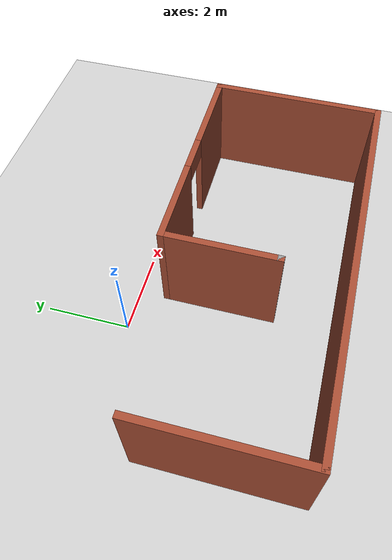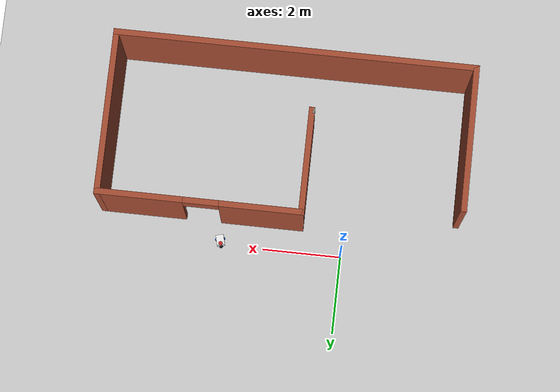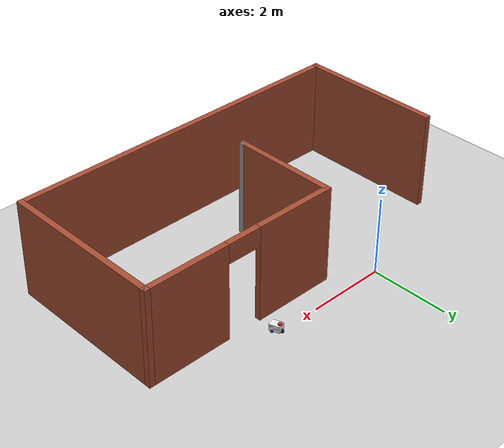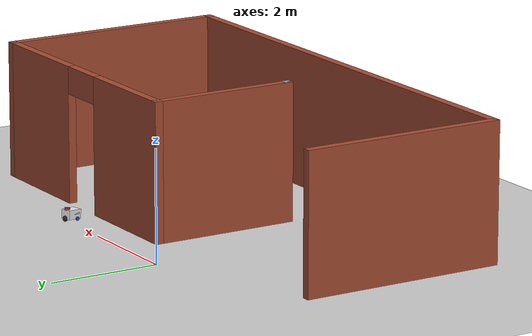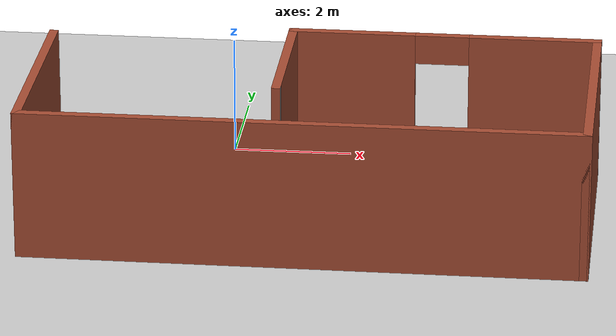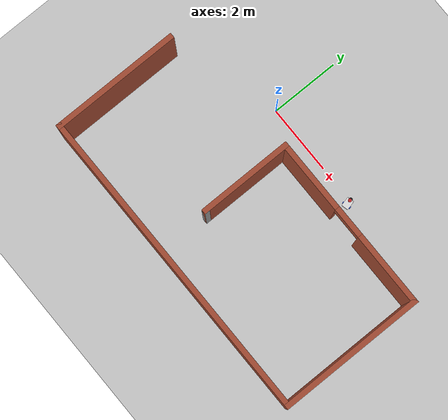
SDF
<sdf version="1.7">
 <world name="default">
  <light name="sun" type="directional">
   <pose>0 0 10 0 -0 0</pose>
   <diffuse>0.8 0.8 0.8 1</diffuse>
   <specular>0.2 0.2 0.2 1</specular>
   <attenuation>
    <range>1000</range>
    <constant>0.9</constant>
    <linear>0.01</linear>
    <quadratic>0.001</quadratic>
   </attenuation>
   <direction>-0.5 0.1 -0.9</direction>
   <spot><inner_angle>0</inner_angle><outer_angle>0</outer_angle><falloff>0</falloff></spot>
  </light>
  <model name="ground_plane">
   <static>1</static>
   <link name="link">
    <collision name="collision">
     <geometry><plane><normal>0 0 1</normal><size>100 100</size></plane></geometry>
     <surface>
      <contact><collide_bitmask>65535</collide_bitmask></contact>
      <friction><ode><mu>100</mu><mu2>50</mu2></ode></friction>
     </surface>
    </collision>
    <visual name="visual">
     <cast_shadows>0</cast_shadows>
     <geometry><plane><normal>0 0 1</normal><size>100 100</size></plane></geometry>
     <material>
      <script><uri>file://media/materials/scripts/gazebo.material</uri><name>Gazebo/Grey</name></script>
     </material>
    </visual>
   </link>
  </model>
  <gravity>0 0 -9.8</gravity>
  <magnetic_field>6e-06 2.3e-05 -4.2e-05</magnetic_field>
  <atmosphere type="adiabatic"/>
  <physics type="ode">
   <max_step_size>0.001</max_step_size>
   <real_time_factor>1</real_time_factor>
   <real_time_update_rate>1000</real_time_update_rate>
  </physics>
  <scene><ambient>0.4 0.4 0.4 1</ambient><background>0.7 0.7 0.7 1</background><shadows>1</shadows></scene>
  <audio><device>default</device></audio>
  <spherical_coordinates>
   <surface_model>EARTH_WGS84</surface_model>
   <latitude_deg>0</latitude_deg>
   <longitude_deg>0</longitude_deg>
   <elevation>0</elevation>
   <heading_deg>0</heading_deg>
  </spherical_coordinates>
  <model name="Home">
   <pose>1.64 -2.4175 0 0 -0 0</pose>
   <link name="Wall_0">
    <collision name="Wall_0_Collision">
     <geometry><box><size>3.75 0.15 2.5</size></box></geometry>
     <pose>0 0 1.25 0 -0 0</pose>
    </collision>
    <visual name="Wall_0_Visual">
     <pose>0 0 1.25 0 -0 0</pose>
     <geometry><box><size>3.75 0.15 2.5</size></box></geometry>
     <material>
      <script><uri>file://media/materials/scripts/gazebo.material</uri><name>Gazebo/Bricks</name></script>
      <ambient>1 1 1 1</ambient>
     </material>
     <meta><layer>0</layer></meta>
    </visual>
    <pose>-4.55 -0.5425 0 0 -0 -1.5708</pose>
   </link>
   <link name="Wall_1">
    <collision name="Wall_1_Collision">
     <geometry><box><size>9.25 0.15 2.5</size></box></geometry>
     <pose>0 0 1.25 0 -0 0</pose>
    </collision>
    <visual name="Wall_1_Visual">
     <pose>0 0 1.25 0 -0 0</pose>
     <geometry><box><size>9.25 0.15 2.5</size></box></geometry>
     <material>
      <script><uri>file://media/materials/scripts/gazebo.material</uri><name>Gazebo/Bricks</name></script>
      <ambient>1 1 1 1</ambient>
     </material>
     <meta><layer>0</layer></meta>
    </visual>
    <pose>0 -2.3425 0 0 -0 0</pose>
   </link>
   <link name="Wall_2">
    <collision name="Wall_2_Collision">
     <geometry><box><size>4.25 0.15 2.5</size></box></geometry>
     <pose>0 0 1.25 0 -0 0</pose>
    </collision>
    <visual name="Wall_2_Visual">
     <pose>0 0 1.25 0 -0 0</pose>
     <geometry><box><size>4.25 0.15 2.5</size></box></geometry>
     <material>
      <script><uri>file://media/materials/scripts/gazebo.material</uri><name>Gazebo/Bricks</name></script>
      <ambient>1 1 1 1</ambient>
     </material>
     <meta><layer>0</layer></meta>
    </visual>
    <pose>4.55 -0.2925 0 0 -0 1.5708</pose>
   </link>
   <link name="Wall_3">
    <pose>2 1.7575 0 0 -0 3.14159</pose>
    <visual name="Wall_3_Visual_0">
     <pose>-1.5175 0 1.25 0 -0 0</pose>
     <geometry><box><size>2.215 0.15 2.5</size></box></geometry>
     <material>
      <script><uri>file://media/materials/scripts/gazebo.material</uri><name>Gazebo/Bricks</name></script>
      <ambient>1 1 1 1</ambient>
     </material>
     <meta><layer>0</layer></meta>
    </visual>
    <collision name="Wall_3_Collision_0">
     <geometry><box><size>2.215 0.15 2.5</size></box></geometry>
     <pose>-1.5175 0 1.25 0 -0 0</pose>
    </collision>
    <visual name="Wall_3_Visual_1">
     <pose>1.5575 0 1.25 0 -0 0</pose>
     <geometry><box><size>2.135 0.15 2.5</size></box></geometry>
     <material>
      <script><uri>file://media/materials/scripts/gazebo.material</uri><name>Gazebo/Bricks</name></script>
      <ambient>1 1 1 1</ambient>
     </material>
     <meta><layer>0</layer></meta>
    </visual>
    <collision name="Wall_3_Collision_1">
     <geometry><box><size>2.135 0.15 2.5</size></box></geometry>
     <pose>1.5575 0 1.25 0 -0 0</pose>
    </collision>
    <visual name="Wall_3_Visual_2">
     <pose>0.04 0 2.25 0 -0 0</pose>
     <geometry><box><size>0.9 0.15 0.5</size></box></geometry>
     <material>
      <script><uri>file://media/materials/scripts/gazebo.material</uri><name>Gazebo/Bricks</name></script>
      <ambient>1 1 1 1</ambient>
     </material>
     <meta><layer>0</layer></meta>
    </visual>
    <collision name="Wall_3_Collision_2">
     <geometry><box><size>0.9 0.15 0.5</size></box></geometry>
     <pose>0.04 0 2.25 0 -0 0</pose>
    </collision>
   </link>
   <link name="Wall_4">
    <collision name="Wall_4_Collision">
     <geometry><box><size>2.75 0.15 2.5</size></box></geometry>
     <pose>0 0 1.25 0 -0 0</pose>
    </collision>
    <visual name="Wall_4_Visual">
     <pose>0 0 1.25 0 -0 0</pose>
     <geometry><box><size>2.75 0.15 2.5</size></box></geometry>
     <material>
      <script><uri>file://media/materials/scripts/gazebo.material</uri><name>Gazebo/Bricks</name></script>
      <ambient>1 1 1 1</ambient>
     </material>
     <meta><layer>0</layer></meta>
    </visual>
    <pose>-0.55 0.4575 0 0 -0 -1.5708</pose>
   </link>
   <link name="Wall_5">
    <collision name="Wall_5_Collision">
     <geometry><box><size>0.15 0.15 2.5</size></box></geometry>
     <pose>0 0 1.25 0 -0 0</pose>
    </collision>
    <visual name="Wall_5_Visual">
     <pose>0 0 1.25 0 -0 0</pose>
     <geometry><box><size>0.15 0.15 2.5</size></box></geometry>
     <material>
      <script><uri>file://media/materials/scripts/gazebo.material</uri><name>Gazebo/Grey</name></script>
      <ambient>1 1 1 1</ambient>
     </material>
     <meta><layer>0</layer></meta>
    </visual>
    <pose>-0.55 -0.8425 0 0 -0 0</pose>
   </link>
   <static>1</static>
  </model>
  <model name="my_bot">
   <link name="base_link">
    <inertial>
     <pose>0.084285 0 0.077857 0 -0 0</pose>
     <mass>0.70001</mass>
     <inertia>
      <ixx>0.00450696</ixx>
      <ixy>0</ixy>
      <ixz>0.000168579</ixz>
      <iyy>0.00801495</iyy>
      <iyz>0</iyz>
      <izz>0.00706732</izz>
     </inertia>
    </inertial>
    <collision name="base_link_fixed_joint_lump__chassis_collision">
     <pose>0.05 0 0.075 0 -0 0</pose>
     <geometry><box><size>0.27 0.2 0.17</size></box></geometry>
    </collision>
    <collision name="base_link_fixed_joint_lump__caster_wheel_collision_1">
     <pose>0.19 0 0 0 -0 0</pose>
     <geometry><sphere><radius>0.05</radius></sphere></geometry>
     <surface><friction><ode><mu>0.001</mu><mu2>0.001</mu2></ode></friction></surface>
    </collision>
    <collision name="base_link_fixed_joint_lump__imu_frame_collision_2">
     <pose>0.05 0 0.1 0 -0 0</pose>
     <geometry><box><size>0.2 0.2 0.05</size></box></geometry>
    </collision>
    <collision name="base_link_fixed_joint_lump__laser_frame_collision_3">
     <pose>0.15 0 0.17 0 -0 0</pose>
     <geometry><cylinder><length>0.04</length><radius>0.05</radius></cylinder></geometry>
    </collision>
    <visual name="base_link_fixed_joint_lump__chassis_visual">
     <pose>0.05 0 0.075 0 -0 0</pose>
     <geometry><box><size>0.27 0.2 0.17</size></box></geometry>
     <material>
      <script><name>Gazebo/White</name><uri>file://media/materials/scripts/gazebo.material</uri></script>
     </material>
    </visual>
    <visual name="base_link_fixed_joint_lump__caster_wheel_visual_1">
     <pose>0.19 0 0 0 -0 0</pose>
     <geometry><sphere><radius>0.05</radius></sphere></geometry>
     <material>
      <script><name>Gazebo/Black</name><uri>file://media/materials/scripts/gazebo.material</uri></script>
     </material>
    </visual>
    <visual name="base_link_fixed_joint_lump__imu_frame_visual_2">
     <pose>0.05 0 0.1 0 -0 0</pose>
     <geometry><box><size>0.2 0.2 0.05</size></box></geometry>
    </visual>
    <visual name="base_link_fixed_joint_lump__laser_frame_visual_3">
     <pose>0.15 0 0.17 0 -0 0</pose>
     <geometry><cylinder><length>0.04</length><radius>0.05</radius></cylinder></geometry>
     <material>
      <script><name>Gazebo/Red</name><uri>file://media/materials/scripts/gazebo.material</uri></script>
     </material>
    </visual>
    <sensor name="imu_sensor" type="imu">
     <always_on>1</always_on>
     <update_rate>100</update_rate>
     <visualize>1</visualize>
     <topic>__default_topic__</topic>
     <plugin name="imu_plugin" filename="libgazebo_ros_imu_sensor.so">
      <topicName>imu</topicName>
      <bodyName>imu_frame</bodyName>
      <updateRateHZ>10.0</updateRateHZ>
      <gaussianNoise>0.0</gaussianNoise>
      <xyzOffset>0 0 0</xyzOffset>
      <rpyOffset>0 0 0</rpyOffset>
      <frameName>imu_frame</frameName>
      <initialOrientationAsReference>0</initialOrientationAsReference>
     </plugin>
     <pose>0.05 0 0.1 0 -0 0</pose>
    </sensor>
    <sensor name="laser" type="ray">
     <visualize>1</visualize>
     <update_rate>10</update_rate>
     <ray>
      <scan>
       <horizontal>
        <samples>360</samples>
        <min_angle>-3.14</min_angle>
        <max_angle>3.14</max_angle>
        <resolution>1</resolution>
       </horizontal>
       <vertical><samples>1</samples><min_angle>0</min_angle><max_angle>0</max_angle></vertical>
      </scan>
      <range><min>0.3</min><max>12</max></range>
     </ray>
     <plugin name="laser_controller" filename="libgazebo_ros_ray_sensor.so">
      <ros><argument>~/out:=scan</argument></ros>
      <output_type>sensor_msgs/LaserScan</output_type>
      <frame_name>laser_frame</frame_name>
     </plugin>
     <pose>0.15 0 0.17 0 -0 0</pose>
    </sensor>
   </link>
   <joint name="left_wheel_joint" type="revolute">
    <pose relative_to="base_link">0 0.112 0 -1.5708 0 0</pose>
    <parent>base_link</parent>
    <child>left_wheel</child>
    <axis>
     <xyz>0 0 1</xyz>
     <limit><lower>-1e+16</lower><upper>1e+16</upper></limit>
     <dynamics><spring_reference>0</spring_reference><spring_stiffness>0</spring_stiffness></dynamics>
    </axis>
   </joint>
   <link name="left_wheel">
    <pose relative_to="left_wheel_joint">0 0 0 0 -0 0</pose>
    <inertial>
     <mass>0.1</mass>
     <inertia>
      <ixx>3.58333e-05</ixx>
      <ixy>0</ixy>
      <ixz>0</ixz>
      <iyy>3.58333e-05</iyy>
      <iyz>0</iyz>
      <izz>6.125e-05</izz>
     </inertia>
    </inertial>
    <collision name="left_wheel_collision">
     <geometry><cylinder><length>0.025</length><radius>0.035</radius></cylinder></geometry>
    </collision>
    <visual name="left_wheel_visual">
     <geometry><cylinder><length>0.025</length><radius>0.035</radius></cylinder></geometry>
     <material>
      <script><name>Gazebo/Blue</name><uri>file://media/materials/scripts/gazebo.material</uri></script>
     </material>
    </visual>
   </link>
   <joint name="right_wheel_joint" type="revolute">
    <pose relative_to="base_link">0 -0.112 0 1.5708 -0 0</pose>
    <parent>base_link</parent>
    <child>right_wheel</child>
    <axis>
     <xyz>0 0 -1</xyz>
     <limit><lower>-1e+16</lower><upper>1e+16</upper></limit>
     <dynamics><spring_reference>0</spring_reference><spring_stiffness>0</spring_stiffness></dynamics>
    </axis>
   </joint>
   <link name="right_wheel">
    <pose relative_to="right_wheel_joint">0 0 0 0 -0 0</pose>
    <inertial>
     <mass>0.1</mass>
     <inertia>
      <ixx>3.58333e-05</ixx>
      <ixy>0</ixy>
      <ixz>0</ixz>
      <iyy>3.58333e-05</iyy>
      <iyz>0</iyz>
      <izz>6.125e-05</izz>
     </inertia>
    </inertial>
    <collision name="right_wheel_collision">
     <geometry><cylinder><length>0.025</length><radius>0.035</radius></cylinder></geometry>
    </collision>
    <visual name="right_wheel_visual">
     <geometry><cylinder><length>0.025</length><radius>0.035</radius></cylinder></geometry>
     <material>
      <script><name>Gazebo/Blue</name><uri>file://media/materials/scripts/gazebo.material</uri></script>
     </material>
    </visual>
   </link>
   <static>0</static>
   <plugin name="gazebo_ros2_control" filename="libgazebo_ros2_control.so">
    <parameters>/home/lucas/dev_ws/install/wood_bot/share/wood_bot/config/my_controllers.yaml</parameters>
    <parameters>/home/lucas/dev_ws/install/wood_bot/share/wood_bot/config/gaz_ros2_ctl_use_sim.yaml</parameters>
   </plugin>
   <pose>3.13563 -0.149251 0.034996 3.4e-05 -0.079024 1.81838</pose>
  </model>
 </world>
</sdf>
